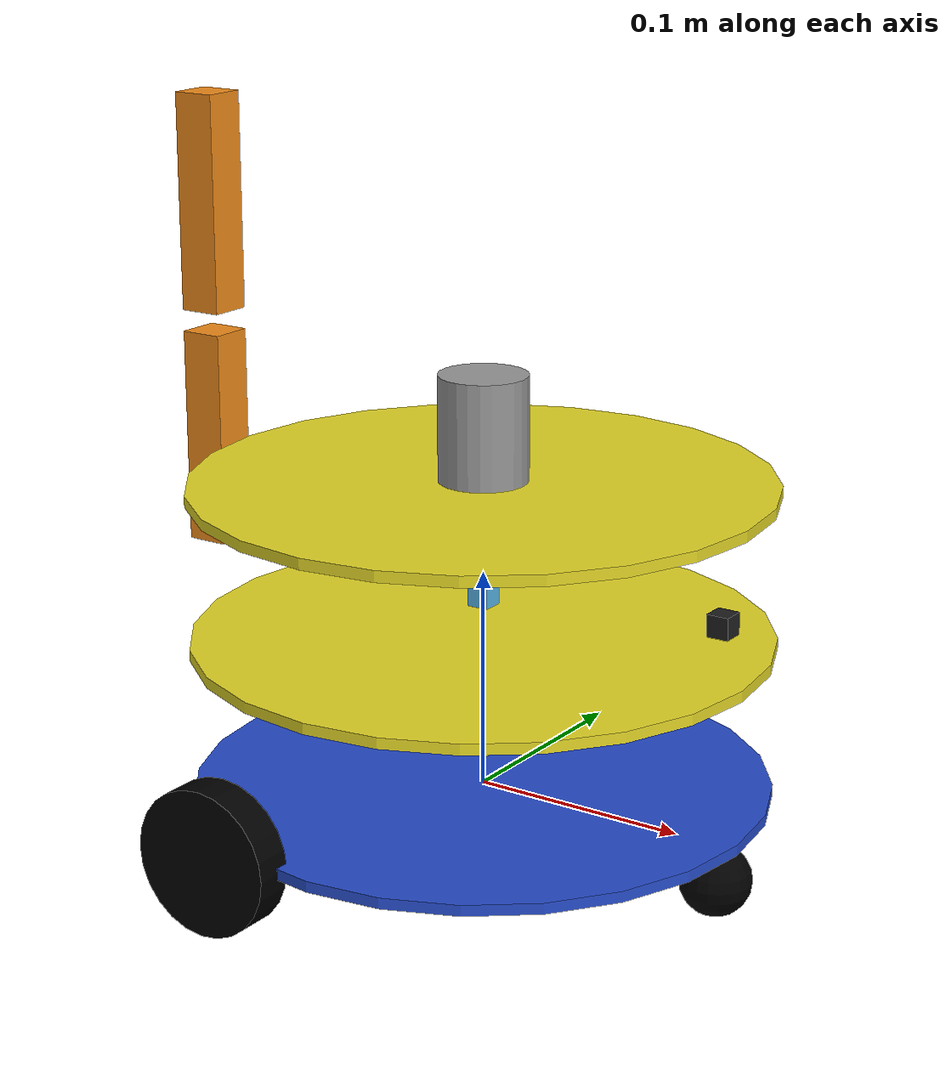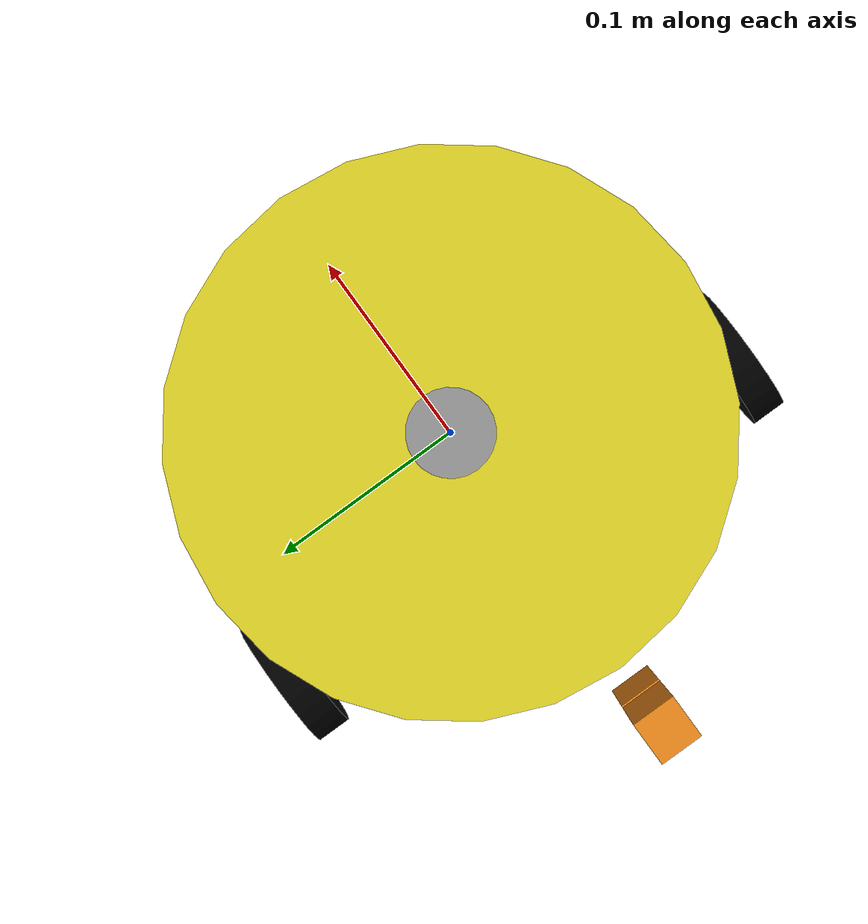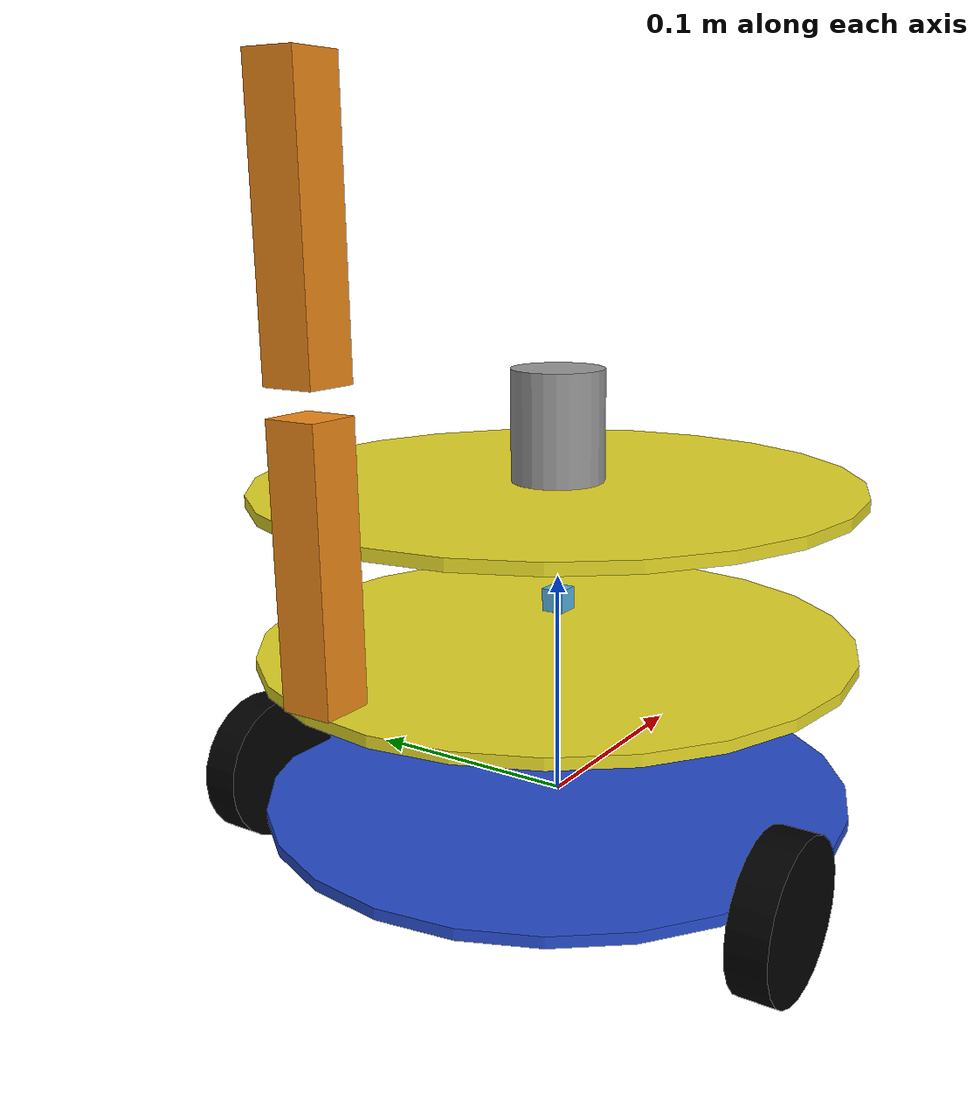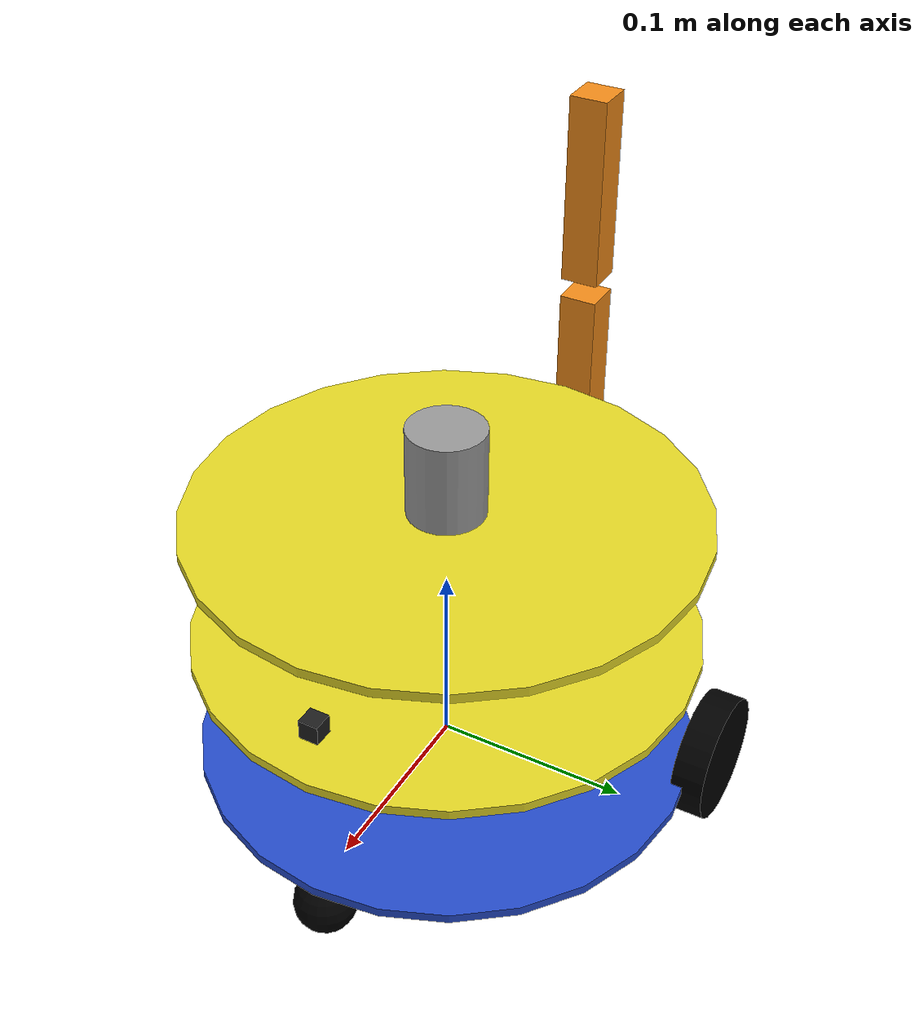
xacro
<?xml version="1.0" encoding="utf-8"?>

<robot name="robot" xmlns:xacro="http://www.ros.org/wiki/xacro">

    <xacro:arg name="lidar_enabled" default="true" />
    <xacro:arg name="gps_enabled" default="true" />
    <xacro:arg name="imu_enabled" default="true" />
    <xacro:arg name="camera_enabled" default="true" />
    <xacro:arg name="tf_odom_enabled" default="true" />

    <!-- Include -->
    <xacro:include filename="$(find my_robot)/urdf/body/body.urdf.xacro" />
    <xacro:include filename="$(find my_robot)/urdf/accessories/rplidar.xacro" />
    <xacro:include filename="$(find my_robot)/urdf/accessories/gps.xacro" />
    <xacro:include filename="$(find my_robot)/urdf/accessories/imu.xacro" />
    <xacro:include filename="$(find my_robot)/urdf/accessories/usb_camera.xacro" />

    <!-- Body of robot, with plates, standoffs and Create -->
    <xacro:body tf_odom_enabled="$(arg tf_odom_enabled)"/>

    <!-- Attach the Rplidar -->
    <xacro:if value="$(arg lidar_enabled)">
        <joint name="rplidar_joint" type="fixed">
            <origin xyz="0 0 0.025" rpy="0 0 0" />
            <parent link="plate_2_link"/>
            <child link="laser_link"/>
        </joint>

        <xacro:rplidar />
    </xacro:if>

    <!-- Attach the GPS -->
    <xacro:if value="$(arg gps_enabled)">
        <joint name="gps_joint" type="fixed">
            <origin xyz="0 0 0.02" rpy="0 0 0" />
            <parent link="plate_1_link"/>
            <child link="gps_link"/>
        </joint>

        <xacro:gps />
    </xacro:if>

    <!-- Attach the IMU -->
    <xacro:if value="$(arg imu_enabled)">
        <joint name="imu_joint" type="fixed">
            <origin xyz="0 0 0.02" rpy="0 0 0" />
            <parent link="base_link"/>
            <child link="imu_link"/>
        </joint>

        <xacro:imu />
    </xacro:if>

    <!-- Attach the Camera -->
    <xacro:if value="$(arg camera_enabled)">
        <joint name="camera_joint" type="fixed">
            <origin xyz="0.12 0 0.1" rpy="0 0 0" />
            <parent link="base_link"/>
            <child link="camera_link"/>
        </joint>

        <xacro:usb_camera />
    </xacro:if>

</robot>

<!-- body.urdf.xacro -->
<robot xmlns:xacro="http://www.ros.org/wiki/xacro">

    <!-- Include -->
    <xacro:include filename="$(find my_robot)/urdf/body/material.urdf" />
    <xacro:include filename="$(find my_robot)/urdf/body/property.urdf.xacro" />
    <xacro:include filename="$(find my_robot)/urdf/body/inertia.urdf.xacro" />
    <xacro:include filename="$(find my_robot)/urdf/body/wheel.urdf.xacro" />
    <xacro:include filename="$(find my_robot)/urdf/body/caster.urdf.xacro" />
    <xacro:include filename="$(find my_robot)/urdf/body/inertia.urdf.xacro" />
    <xacro:include filename="$(find my_robot)/urdf/body/plate.urdf.xacro" />
    <xacro:include filename="$(find my_robot)/urdf/body/arm.urdf.xacro" />

    <!-- robo_body -->
    <xacro:macro name="body" params="tf_odom_enabled">

        <!-- BASE-LINK -->
        <link name="base_link">
            <visual>
                <origin xyz="0 0 0" rpy="0 0 0" />
                <geometry>
                    <cylinder length="${base_link_length}" radius="${base_link_radius}"/>
                </geometry>
            </visual>
            <collision>
                <origin xyz="0 0 0" rpy="0 0 0" />
                <geometry>
                    <cylinder length="${base_link_length}" radius="${base_link_radius}"/>
                </geometry>
            </collision>
            <!-- warning: KDL does not support a root link with an inertia. -->
            <inertial>
                <mass value="5.0"/>
                <origin xyz="0 0 0" rpy="0 0 0" />
                <inertia ixx="1" ixy="0" ixz="0" iyy="1" iyz="0" izz="1"/>
            </inertial>
        </link>

        <gazebo reference="base_link">
            <material>Gazebo/Blue</material>
        </gazebo>

        <!-- Wheel Definitions -->
        <xacro:wheel lr="right" translateY="1" parent="base_link"/>
        <xacro:wheel lr="left" translateY="-1" parent="base_link"/>

        <!-- Casters Definitions -->
        <xacro:caster fb="front"  translateX="-1" parent="base_link"/>

        <!-- plate Definitions -->
        <xacro:plate num="1" parent="base_link" />
        <xacro:plate num="2" parent="plate_1_link" />

        <!-- Arm Definitions -->
        <xacro:arm parent="base_link"/>

        <!-- controller -->
        <gazebo>
            <plugin name="gazebo_ros_control" filename="libgazebo_ros_control.so">
                <robotSimType>gazebo_ros_control/DefaultRobotHWSim</robotSimType>
                <legacyModeNS>true</legacyModeNS>
            </plugin>
        </gazebo>

        <gazebo>
            <plugin name="differential_drive_controller" filename="libgazebo_ros_diff_drive.so">
                <rosDebugLevel>Debug</rosDebugLevel>
                <publishWheelTF>true</publishWheelTF>
                <robotNamespace>/</robotNamespace>
                <publishOdomTF>${tf_odom_enabled}</publishOdomTF>
                <publishTf>1</publishTf>
                <publishWheelJointState>true</publishWheelJointState>
                <broadcastTF>1</broadcastTF>
                <alwaysOn>true</alwaysOn>
                <updateRate>100.0</updateRate>
                <legacyMode>true</legacyMode>
                <leftJoint>wheel_left_joint</leftJoint>
                <rightJoint>wheel_right_joint</rightJoint>
                <wheelSeparation>${base_link_radius*2}</wheelSeparation>
                <wheelDiameter>${2*wheel_radius}</wheelDiameter>
                <wheelTorque>30</wheelTorque>
                <wheelAcceleration>1.8</wheelAcceleration>
                <commandTopic>cmd_vel</commandTopic>
                <odometryFrame>odom</odometryFrame>
                <odometryTopic>odom</odometryTopic>
                <robotBaseFrame>base_link</robotBaseFrame>
            </plugin>
        </gazebo>

    </xacro:macro>
</robot>

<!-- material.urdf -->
<robot xmlns:xacro="http://www.ros.org/wiki/xacro">

    <material name="Black">
        <color rgba="0 0 0 1"/>
    </material>

    <material name="White">
        <color rgba="1 1 1 1"/>
    </material>

    <material name="Blue">
        <color rgba="0 0 1 1"/>
    </material>

    <material name="Red">
        <color rgba="1 0 0 1"/>
    </material>

</robot>

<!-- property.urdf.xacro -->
<robot xmlns:xacro="http://www.ros.org/wiki/xacro">

    <!--All units in m-kg-s-radians unit system -->
    <xacro:property name="M_PI" value="3.1415926535897931" />

    <!-- Main body length, width, height and mass -->
    <xacro:property name="base_mass"        value="5.0" />
    <xacro:property name="base_link_radius" value="0.13"/>
    <xacro:property name="base_link_length" value="0.005"/>

    <xacro:property name="motor_x" value="-0.05"/>

    <!-- Wheel radius, height and mass -->
    <xacro:property name="wheel_radius" value="0.033" />
    <xacro:property name="wheel_height" value="0.017" />
    <xacro:property name="wheel_mass"   value="1.0" />

    <!-- Caster radius and mass -->
    <xacro:property name="caster_radius"          value="0.016" />
    <xacro:property name="caster_mass"            value="1.0" />
    <xacro:property name="caster_joint_origin_x"  value="-0.12" />

    <!-- plate height and mass -->
    <xacro:property name="plate_mass"   value="0.05"/>
    <xacro:property name="plate_height" value="0.07"/>
    <xacro:property name="standoff_x"   value="0.12"/>
    <xacro:property name="standoff_y"   value="0.10"/>

</robot>

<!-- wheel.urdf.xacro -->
<robot xmlns:xacro="http://www.ros.org/wiki/xacro">

    <!-- Macro for wheel joint -->
    <xacro:macro name="wheel" params="lr translateY parent">
        <!-- lr: left, right -->
        <link name="wheel_${lr}_link">
            <visual>
                <origin xyz="0 0 0" rpy="${M_PI/2} 0  0 " />
                <geometry>
                    <cylinder length="${wheel_height}" radius="${wheel_radius}" />
                </geometry>
                <material name="Black" />
            </visual>
            <collision>
                <origin xyz="0 0 0" rpy="${M_PI/2} 0 0 " />
                <geometry>
                    <cylinder length="${wheel_height}" radius="${wheel_radius}" />
                </geometry>
            </collision>
            <xacro:cylinder_inertial_matrix  m="${wheel_mass}" r="${wheel_radius}" h="${wheel_height}" />
        </link>

        <gazebo reference="wheel_${lr}_link">
            <material>Gazebo/Black</material>
            <mu1>5.0</mu1>
            <mu2>5.0</mu2>
            <kp>10000.0</kp>
            <kd>10.0</kd>
            <minDepth>0.0</minDepth>
            <maxVel>5</maxVel>
            <fdir1>0 0 0</fdir1>
        </gazebo>

        <joint name="wheel_${lr}_joint" type="continuous">
            <parent link="${parent}"/>
            <child link="wheel_${lr}_link"/>
            <origin xyz="${motor_x} ${translateY * base_link_radius} 0" rpy="0 0 0" />
            <axis xyz="0 1 0" rpy="0 0 0" />
        </joint>

    </xacro:macro>
</robot>

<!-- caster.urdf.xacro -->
<robot xmlns:xacro="http://www.ros.org/wiki/xacro">

    <!-- Macro for caster joint -->
    <xacro:macro name="caster" params="fb translateX parent">
        <!-- fb: front, back -->
        <link name="${fb}_caster_link">
            <visual>
                <origin xyz="0 0 0 " rpy="0 0 0" />
                <geometry>
                    <sphere radius="${caster_radius}" />
                </geometry>
                <material name="Black" />
            </visual>
            <collision>
                <geometry>
                    <sphere radius="${caster_radius}" />
                </geometry>
                <origin xyz="0 0 0 " rpy="0 0 0" />
            </collision>
            <xacro:sphere_inertial_matrix  m="${caster_mass}" r="${caster_radius}" />
        </link>

        <gazebo reference="${fb}_caster_link">
            <material>Gazebo/Gray</material>
        </gazebo>

        <joint name="base_to_${fb}_caster_joint" type="fixed">
            <parent link="${parent}"/>
            <child link="${fb}_caster_link"/>
            <origin xyz="${translateX*caster_joint_origin_x} 0 ${-caster_radius}" rpy="0 0 0"/>
        </joint>
    </xacro:macro>
</robot>

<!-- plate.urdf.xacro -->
<robot xmlns:xacro="http://www.ros.org/wiki/xacro">
    <!-- Macro for plate joint -->
    <xacro:macro name="plate" params="num parent">
        <link name="plate_${num}_link">
            <xacro:cylinder_inertial_matrix  m="${plate_mass}" r="${base_link_radius}" h="${base_link_length}" />
            <visual>
                <origin xyz=" 0 0 0 " rpy="0 0 0" />
                <geometry>
                    <cylinder length="${base_link_length}" radius="${base_link_radius}"/>
                </geometry>
                <material name="yellow"/>
            </visual>

            <collision>
                <origin xyz="0.0 0.0 0.0" rpy="0 0 0" />
                <geometry>
                    <cylinder length="${base_link_length}" radius="${base_link_radius}"/>
                </geometry>
            </collision>
        </link>
        <gazebo reference="plate_${num}_link">
            <material>Gazebo/Blue</material>
        </gazebo>
        <joint name="plate_${num}_joint" type="fixed">
            <origin xyz="0 0 ${plate_height}" rpy="0 0 0" />
            <parent link="${parent}"/>
            <child link="plate_${num}_link" />
        </joint>
    </xacro:macro>

</robot>

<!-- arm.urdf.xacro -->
<robot xmlns:xacro="http://www.ros.org/wiki/xacro">

    <xacro:macro name="arm" params="parent">

        <!-- bar 1 -->
        <joint name="arm_joint1" type="revolute">
            <parent link="${parent}"/>
            <child link="arm_link1"/>
            <origin xyz="-0.15 0 0.1" rpy="0 0 0" />
            <axis xyz="0 1 0" />
            <limit effort="5.0" lower="${-M_PI/2.0}" upper="0" velocity="0.1"/>
        </joint>

        <link name="arm_link1">
            <visual>
                <origin xyz="0 0 0.04" rpy="0 0 0" />
                <geometry>
                    <box size="0.02 0.02 0.1" />
                </geometry>
            </visual>
            <inertial>
                <origin xyz="0 0 0.04" rpy="0 0 0" />
                <mass value="1e-3" />
                <inertia ixx="1e-6" ixy="0.0" ixz="0.0"
                         iyy="1e-3" iyz="0.0"
                         izz="1e-6"/>
            </inertial>
        </link>

        <gazebo reference="arm_link1">
            <material>Gazebo/Orange</material>
        </gazebo>

        <transmission name="trans1">
            <type>transmission_interface/SimpleTransmission</type>
            <joint name="arm_joint1">
                <hardwareInterface>hardware_interface/EffortJointInterface</hardwareInterface>
            </joint>
            <actuator name="motor1">
                <hardwareInterface>hardware_interface/EffortJointInterface</hardwareInterface>
                <mechanicalReduction>1</mechanicalReduction>
            </actuator>
        </transmission>

        <!-- bar 2 -->
        <joint name="arm_joint2" type="revolute">
            <parent link="arm_link1"/>
            <child link="arm_link2"/>
            <origin xyz="0 0.0 0.1" rpy="0 0 0" />
            <axis xyz="0 1 0" />
            <limit effort="5.0" lower="${-M_PI/2.0}" upper="0" velocity="0.1"/>
        </joint>

        <link name="arm_link2">
            <visual>
                <origin xyz="0 0 0.05" rpy="0 0 0" />
                <geometry>
                    <box size="0.02 0.02 0.1" />
                </geometry>
            </visual>
            <inertial>
                <origin xyz="0 0 0.05" rpy="0 0 0" />
                <mass value="1e-3" />
                <inertia ixx="1e-6" ixy="0.0" ixz="0.0"
                         iyy="1e-3" iyz="0.0"
                         izz="1e-6"/>
            </inertial>
        </link>

        <gazebo reference="arm_link2">
            <material>Gazebo/Orange</material>
        </gazebo>

        <transmission name="trans2">
            <type>transmission_interface/SimpleTransmission</type>
            <joint name="arm_joint2">
                <hardwareInterface>hardware_interface/EffortJointInterface</hardwareInterface>
            </joint>
            <actuator name="motor2">
                <hardwareInterface>hardware_interface/EffortJointInterface</hardwareInterface>
                <mechanicalReduction>1</mechanicalReduction>
            </actuator>
        </transmission>

    </xacro:macro>

</robot>

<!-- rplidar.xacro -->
<robot xmlns:xacro="http://www.ros.org/wiki/xacro" name="laser">

    <xacro:macro name="rplidar" params="prefix:=laser">
        <!-- Create laser reference frame -->
        <link name="${prefix}_link">
            <inertial>
                <mass value="0.1" />
                <origin xyz="0 0 0" />
                <inertia ixx="0.01" ixy="0.0" ixz="0.0"
                         iyy="0.01" iyz="0.0"
                         izz="0.01" />
            </inertial>

            <visual>
                <origin xyz="0 0 0" rpy="0 0 0" />
                <geometry>
                    <cylinder length="0.05" radius="0.02"/>
                </geometry>
                <material name="gray"/>
            </visual>

            <collision>
                <origin xyz="0 0 0" rpy="0 0 0" />
                <geometry>
                    <cylinder length="0.05" radius="0.02"/>
                </geometry>
            </collision>
        </link>

        <gazebo reference="${prefix}_link">
            <material>Gazebo/Black</material>
        </gazebo>

        <gazebo reference="${prefix}_link">
            <sensor type="ray" name="rplidar">
                <pose>0 0 0 0 0 0</pose>
                <visualize>false</visualize>
                <update_rate>5.5</update_rate>
                <ray>
                    <scan>
                        <horizontal>
                            <samples>270</samples>
                            <resolution>1</resolution>
                            <min_angle>-2.356125</min_angle>
                            <max_angle>2.356125</max_angle>
                        </horizontal>
                    </scan>
                    <range>
                        <min>0.05</min>
                        <max>6.0</max>
                        <resolution>0.01</resolution>
                    </range>
                    <noise>
                        <type>gaussian</type>
                        <mean>0.0</mean>
                        <stddev>0.01</stddev>
                    </noise>
                </ray>
                <plugin name="gazebo_rplidar" filename="libgazebo_ros_laser.so">
                    <topicName>/scan</topicName>
                    <frameName>laser_link</frameName>
                </plugin>
            </sensor>
        </gazebo>

    </xacro:macro>
</robot>

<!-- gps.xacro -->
<robot xmlns:xacro="http://www.ros.org/wiki/xacro">

    <xacro:macro name="gps" params="prefix:=gps">
        <link name="${prefix}_link">
            <visual>
                <origin xyz="0 0 0" rpy="0 0 0" />
                <geometry>
                    <box size="0.01 0.01 0.01" />
                </geometry>
            </visual>
            <inertial>
                <mass value="1e-5" />
                <origin xyz="0 0 0" rpy="0 0 0" />
                <inertia ixx="1e-6" ixy="0" ixz="0" iyy="1e-6" iyz="0" izz="1e-6" />
            </inertial>
        </link>

        <gazebo>
            <plugin name="hector_gps_sim" filename="libhector_gazebo_ros_gps.so">
                <alwaysOn>1</alwaysOn>
                <frameId>${prefix}_link</frameId>
                <updateRate>1.0</updateRate>
                <bodyName>base_link</bodyName>
                <topicName>gps_fix</topicName>
                <velocityTopicName>gps_vel</velocityTopicName>
                <drift>0 0 0</drift>
                <gaussianNoise>1.0 1.0 0</gaussianNoise>
                <velocityDrift>0 0 0</velocityDrift>
                <velocityGaussianNoise>0 0 0</velocityGaussianNoise>
                <referenceLatitude>25.013508</referenceLatitude>
                <referenceLongitude>121.547344</referenceLongitude>
                <!-- # heading direction is the north, zero means toward to gazebo +x -->
                <referenceHeading>90.0</referenceHeading>
            </plugin>
        </gazebo>
    </xacro:macro>

</robot>

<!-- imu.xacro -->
<robot xmlns:xacro="http://www.ros.org/wiki/xacro">

    <xacro:macro name="imu" params="prefix:=imu">
        <link name="${prefix}_link">
            <visual>
                <origin xyz="0 0 0" rpy="0 0 0" />
                <geometry>
                    <box size="0.01 0.01 0.01" />
                </geometry>
            </visual>
            <inertial>
                <mass value="1e-5" />
                <origin xyz="0 0 0" rpy="0 0 0" />
                <inertia ixx="1e-6" ixy="0" ixz="0" iyy="1e-6" iyz="0" izz="1e-6" />
            </inertial>
        </link>

        <gazebo reference="imu_link">
            <material>Gazebo/Yellow</material>
        </gazebo>

        <gazebo reference="imu_link">
            <gravity>true</gravity>
            <sensor name="imu_sensor" type="imu">
                <always_on>true</always_on>
                <update_rate>100</update_rate>
                <visualize>true</visualize>
                <topic>__default_topic__</topic>
                <plugin filename="libgazebo_ros_imu_sensor.so" name="imu_plugin">
                <topicName>imu</topicName>
                <bodyName>imu_link</bodyName>
                <updateRateHZ>10.0</updateRateHZ>
                <gaussianNoise>0.0</gaussianNoise>
                <xyzOffset>0 0 0</xyzOffset>
                <rpyOffset>0 0 0</rpyOffset>
                <frameName>imu_link</frameName>
            </plugin>
            <pose>0 0 0 0 0 0</pose>
            </sensor>
        </gazebo>
    </xacro:macro>

</robot>

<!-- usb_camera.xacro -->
<robot xmlns:xacro="http://www.ros.org/wiki/xacro">

    <xacro:macro name="usb_camera" params="prefix:=camera">

        <link name="${prefix}_link">
            <visual>
                <origin xyz="0 0 0" rpy="0 0 0" />
                <geometry>
                    <box size="0.01 0.01 0.01" />
                </geometry>
            </visual>
            <inertial>
                <mass value="1e-5" />
                <origin xyz="0 0 0" rpy="0 0 0" />
                <inertia ixx="1e-6" ixy="0" ixz="0" iyy="1e-6" iyz="0" izz="1e-6" />
            </inertial>
        </link>

        <gazebo reference="${prefix}_link">
            <material>Gazebo/Black</material>
        </gazebo>

        <gazebo reference="camera_link">
            <sensor type="camera" name="camera_node">
                <update_rate>30.0</update_rate>
                <camera name="head">
                    <horizontal_fov>1.3962634</horizontal_fov>
                    <image>
                        <width>800</width>
                        <height>600</height>
                        <format>R8G8B8</format>
                    </image>
                    <clip>
                        <near>0.02</near>
                        <far>300</far>
                    </clip>
                    <noise>
                        <type>gaussian</type>
                        <mean>0.0</mean>
                        <stddev>0.007</stddev>
                    </noise>
                </camera>
                <plugin name="gazebo_camera" filename="libgazebo_ros_camera.so">
                    <alwaysOn>true</alwaysOn>
                    <updateRate>0.0</updateRate>
                    <imageTopicName>image_raw</imageTopicName>
                    <cameraInfoTopicName>camera_info</cameraInfoTopicName>
                    <cameraName>camera</cameraName>
                    <frameName>camera_link</frameName>
                    <hackBaseline>0.07</hackBaseline>
                    <distortionK1>0.0</distortionK1>
                    <distortionK2>0.0</distortionK2>
                    <distortionK3>0.0</distortionK3>
                    <distortionT1>0.0</distortionT1>
                    <distortionT2>0.0</distortionT2>
                </plugin>
            </sensor>
        </gazebo>

    </xacro:macro>

</robot>
